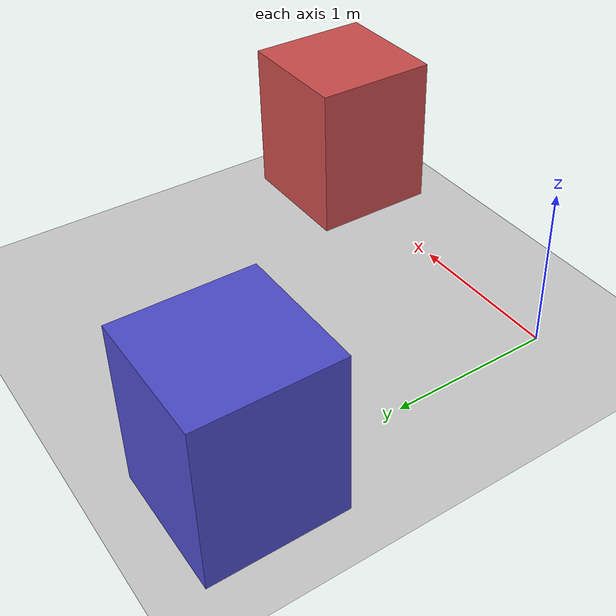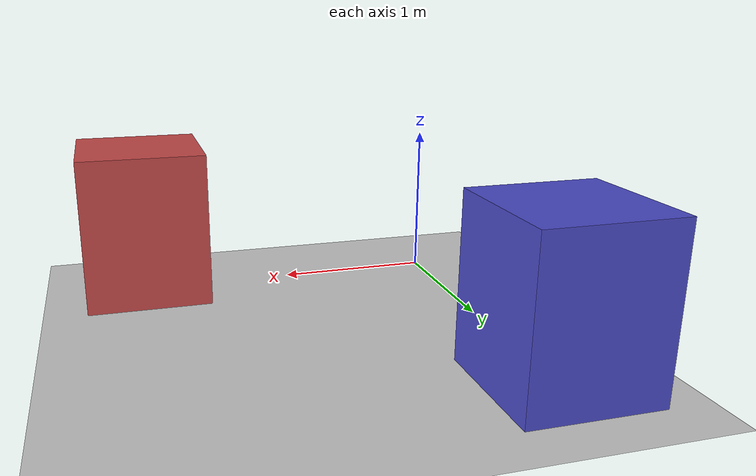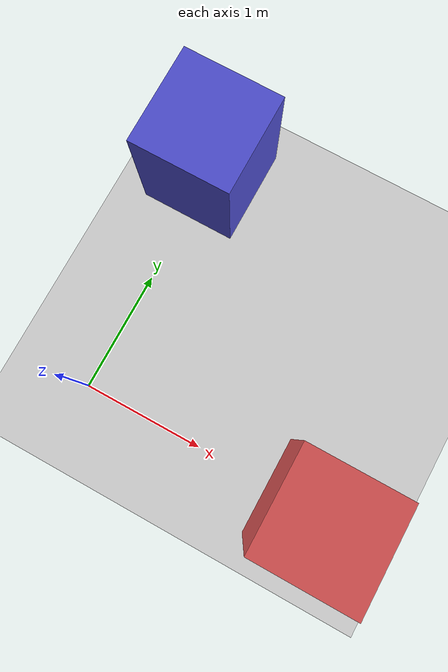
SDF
<?xml version="1.0" ?>
<sdf version="1.9">
  <world name="amr_simulation">
    <light type="directional" name="sun">
      <cast_shadows>true</cast_shadows>
      <pose>0 0 10 0 0 0</pose>
      <diffuse>0.8 0.8 0.8 1</diffuse>
      <specular>0.2 0.2 0.2 1</specular>
      <attenuation>
        <range>1000</range>
        <constant>0.9</constant>
        <linear>0.01</linear>
        <quadratic>0.001</quadratic>
      </attenuation>
      <direction>-0.5 0.1 -0.9</direction>
    </light>

    <model name="ground_plane">
      <static>true</static>
      <link name="link">
        <collision name="collision">
          <geometry>
            <plane>
              <normal>0.0 0.0 1</normal>
            </plane>
          </geometry>
        </collision>
        <visual name="visual">
          <geometry>
            <plane>
              <normal>0.0 0.0 1</normal>
              <size>100 100</size>
            </plane>
          </geometry>
          <material>
            <ambient>0.8 0.8 0.8 1</ambient>
            <diffuse>0.8 0.8 0.8 1</diffuse>
            <specular>0.8 0.8 0.8 1</specular>
          </material>
        </visual>
      </link>
    </model>

    <model name="obstacle_box_1">
      <static>true</static>
      <pose>2 0 0.5 0 0 0</pose>
      <link name="link">
        <collision name="collision">
          <geometry>
            <box><size>0.8 0.8 1.0</size></box>
          </geometry>
        </collision>
        <visual name="visual">
          <geometry>
            <box><size>0.8 0.8 1.0</size></box>
          </geometry>
          <material>
            <ambient>0.6 0.2 0.2 1</ambient>
            <diffuse>0.8 0.3 0.3 1</diffuse>
          </material>
        </visual>
      </link>
    </model>

    <model name="obstacle_box_2">
      <static>true</static>
      <pose>0 2 0.5 0 0 0</pose>
      <link name="link">
        <collision name="collision">
          <geometry>
            <box><size>0.8 0.8 1.0</size></box>
          </geometry>
        </collision>
        <visual name="visual">
          <geometry>
            <box><size>0.8 0.8 1.0</size></box>
          </geometry>
          <material>
            <ambient>0.2 0.2 0.6 1</ambient>
            <diffuse>0.3 0.3 0.8 1</diffuse>
          </material>
        </visual>
      </link>
    </model>
  </world>
</sdf>
